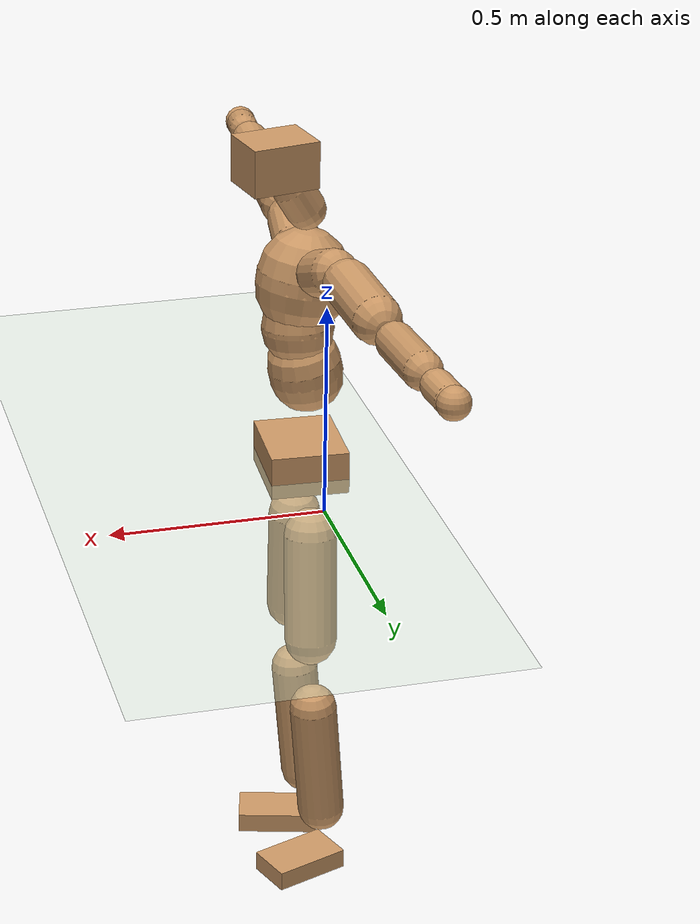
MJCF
<mujoco model="humanoid">
  <compiler coordinate="local" angle="radian"/>
  <default>
    <joint damping="0.0" armature="0.01" stiffness="0.0" limited="true"/>
    <geom conaffinity="1" condim="3" contype="7" margin="0.001" rgba="0.8 0.6 .4 1"/>
  </default>
  <asset>
    <texture type="skybox" builtin="gradient" rgb1=".4 .5 .6" rgb2="0 0 0" width="100" height="100"/>
    <texture builtin="flat" height="1278" mark="cross" markrgb="1 1 1" name="texgeom" random="0.01" rgb1="0.8 0.6 0.4" rgb2="0.8 0.6 0.4" type="cube" width="127"/>
    <texture builtin="checker" height="100" name="texplane" rgb1="0 0 0" rgb2="0.8 0.8 0.8" type="2d" width="100"/>
    <material name="MatPlane" reflectance="0.5" shininess="1" specular="1" texrepeat="60 60" texture="texplane"/>
    <material name="geom" texture="texgeom" texuniform="true"/>
  </asset>
  <worldbody>
    <light cutoff="100" diffuse="1 1 1" dir="-0 0 -1.3" directional="true" exponent="1" pos="0 0 1.3" specular=".1 .1 .1"/>
    <geom conaffinity="1" condim="3" name="floor" pos="0 0 0" rgba="0.8 0.9 0.8 1" size="100 100 .2" type="plane" material="MatPlane"/>
    <body name="Pelvis" pos="-0.0015 -0.2634 0.0224">
      <freejoint name="Pelvis"/>
      <geom type="box" contype="1" conaffinity="1" density="500" pos="-0.0118 0.0006 -0.0087" size="0.0927 0.1089 0.051" quat="0.9997 0.0000 0.0000 -0.0248" name="Pelvis"/>
      <body name="L_Hip" pos="-0.0194 0.0597 -0.0922">
        <joint name="L_Hip_x" type="hinge" pos="0 0 0" axis="1 0 0" stiffness="800" damping="80" armature="0.02" range="-180.0000 180.0000"/>
        <joint name="L_Hip_y" type="hinge" pos="0 0 0" axis="0 1 0" stiffness="800" damping="80" armature="0.02" range="-180.0000 180.0000"/>
        <joint name="L_Hip_z" type="hinge" pos="0 0 0" axis="0 0 1" stiffness="800" damping="80" armature="0.02" range="-180.0000 180.0000"/>
        <geom type="capsule" contype="1" conaffinity="1" density="500" fromto="0.0017 0.0100 -0.0890 0.0068 0.0399 -0.3562" size="0.0628" name="L_Hip"/>
        <body name="L_Knee" pos="0.0085 0.0499 -0.4452">
          <joint name="L_Knee_x" type="hinge" pos="0 0 0" axis="1 0 0" stiffness="800" damping="80" armature="0.02" range="-180.0000 180.0000"/>
          <joint name="L_Knee_y" type="hinge" pos="0 0 0" axis="0 1 0" stiffness="800" damping="80" armature="0.02" range="-180.0000 180.0000"/>
          <joint name="L_Knee_z" type="hinge" pos="0 0 0" axis="0 0 1" stiffness="800" damping="80" armature="0.02" range="-180.0000 180.0000"/>
          <geom type="capsule" contype="1" conaffinity="1" density="500" fromto="-0.0083 -0.0033 -0.0994 -0.0332 -0.0130 -0.3976" size="0.057" name="L_Knee"/>
          <body name="L_Ankle" pos="-0.0415 -0.0163 -0.497">
            <joint name="L_Ankle_x" type="hinge" pos="0 0 0" axis="1 0 0" stiffness="800" damping="80" armature="0.02" range="-180.0000 180.0000"/>
            <joint name="L_Ankle_y" type="hinge" pos="0 0 0" axis="0 1 0" stiffness="800" damping="80" armature="0.02" range="-180.0000 180.0000"/>
            <joint name="L_Ankle_z" type="hinge" pos="0 0 0" axis="0 0 1" stiffness="800" damping="80" armature="0.02" range="-180.0000 180.0000"/>
            <geom type="box" contype="1" conaffinity="1" density="500" pos="0.0663 0.0239 -0.0343" size="0.0937 0.0565 0.0241" quat="0.9851 0.0000 0.0000 0.1722" name="L_Ankle"/>
            <body name="L_Toe" pos="0.1327 0.0479 -0.0686">
              <joint name="L_Toe_x" type="hinge" pos="0 0 0" axis="1 0 0" stiffness="500" damping="50" armature="0.02" range="-180.0000 180.0000"/>
              <joint name="L_Toe_y" type="hinge" pos="0 0 0" axis="0 1 0" stiffness="500" damping="50" armature="0.02" range="-180.0000 180.0000"/>
              <joint name="L_Toe_z" type="hinge" pos="0 0 0" axis="0 0 1" stiffness="500" damping="50" armature="0.02" range="-180.0000 180.0000"/>
              <geom type="box" contype="1" conaffinity="1" density="500" pos="0.0000 0.0000 0.0354" size="0.0011 0.0026 0.0013" quat="0.9843 0.0000 0.0000 0.1764" name="L_Toe"/>
            </body>
          </body>
        </body>
      </body>
      <body name="R_Hip" pos="-0.0151 -0.0615 -0.1022">
        <joint name="R_Hip_x" type="hinge" pos="0 0 0" axis="1 0 0" stiffness="800" damping="80" armature="0.02" range="-180.0000 180.0000"/>
        <joint name="R_Hip_y" type="hinge" pos="0 0 0" axis="0 1 0" stiffness="800" damping="80" armature="0.02" range="-180.0000 180.0000"/>
        <joint name="R_Hip_z" type="hinge" pos="0 0 0" axis="0 0 1" stiffness="800" damping="80" armature="0.02" range="-180.0000 180.0000"/>
        <geom type="capsule" contype="1" conaffinity="1" density="500" fromto="-0.0012 -0.0107 -0.0889 -0.0048 -0.0429 -0.3557" size="0.0623" name="R_Hip"/>
        <body name="R_Knee" pos="-0.006 -0.0536 -0.4446">
          <joint name="R_Knee_x" type="hinge" pos="0 0 0" axis="1 0 0" stiffness="800" damping="80" armature="0.02" range="-180.0000 180.0000"/>
          <joint name="R_Knee_y" type="hinge" pos="0 0 0" axis="0 1 0" stiffness="800" damping="80" armature="0.02" range="-180.0000 180.0000"/>
          <joint name="R_Knee_z" type="hinge" pos="0 0 0" axis="0 0 1" stiffness="800" damping="80" armature="0.02" range="-180.0000 180.0000"/>
          <geom type="capsule" contype="1" conaffinity="1" density="500" fromto="-0.0075 0.0045 -0.0985 -0.0301 0.0178 -0.3938" size="0.0569" name="R_Knee"/>
          <body name="R_Ankle" pos="-0.0376 0.0223 -0.4923">
            <joint name="R_Ankle_x" type="hinge" pos="0 0 0" axis="1 0 0" stiffness="800" damping="80" armature="0.02" range="-180.0000 180.0000"/>
            <joint name="R_Ankle_y" type="hinge" pos="0 0 0" axis="0 1 0" stiffness="800" damping="80" armature="0.02" range="-180.0000 180.0000"/>
            <joint name="R_Ankle_z" type="hinge" pos="0 0 0" axis="0 0 1" stiffness="800" damping="80" armature="0.02" range="-180.0000 180.0000"/>
            <geom type="box" contype="1" conaffinity="1" density="500" pos="0.0713 -0.0196 -0.0360" size="0.0989 0.0541 0.0242" quat="0.9910 0.0000 0.0000 -0.1341" name="R_Ankle"/>
            <body name="R_Toe" pos="0.1425 -0.0393 -0.0721">
              <joint name="R_Toe_x" type="hinge" pos="0 0 0" axis="1 0 0" stiffness="500" damping="50" armature="0.02" range="-180.0000 180.0000"/>
              <joint name="R_Toe_y" type="hinge" pos="0 0 0" axis="0 1 0" stiffness="500" damping="50" armature="0.02" range="-180.0000 180.0000"/>
              <joint name="R_Toe_z" type="hinge" pos="0 0 0" axis="0 0 1" stiffness="500" damping="50" armature="0.02" range="-180.0000 180.0000"/>
              <geom type="box" contype="1" conaffinity="1" density="500" pos="0.0000 0.0000 0.0375" size="0.0011 0.0026 0.0013" quat="0.9920 0.0000 0.0000 -0.1259" name="R_Toe"/>
            </body>
          </body>
        </body>
      </body>
      <body name="Torso" pos="-0.0361 0.0053 0.1421">
        <joint name="Torso_x" type="hinge" pos="0 0 0" axis="1 0 0" stiffness="1000" damping="100" armature="0.02" range="-180.0000 180.0000"/>
        <joint name="Torso_y" type="hinge" pos="0 0 0" axis="0 1 0" stiffness="1000" damping="100" armature="0.02" range="-180.0000 180.0000"/>
        <joint name="Torso_z" type="hinge" pos="0 0 0" axis="0 0 1" stiffness="1000" damping="100" armature="0.02" range="-180.0000 180.0000"/>
        <geom type="capsule" contype="1" conaffinity="1" density="500" fromto="0.0208 0.0033 0.0941 0.0139 0.0022 0.0627" size="0.0873" name="Torso"/>
        <body name="Spine" pos="0.0347 0.0055 0.1568">
          <joint name="Spine_x" type="hinge" pos="0 0 0" axis="1 0 0" stiffness="1000" damping="100" armature="0.02" range="-180.0000 180.0000"/>
          <joint name="Spine_y" type="hinge" pos="0 0 0" axis="0 1 0" stiffness="1000" damping="100" armature="0.02" range="-180.0000 180.0000"/>
          <joint name="Spine_z" type="hinge" pos="0 0 0" axis="0 0 1" stiffness="1000" damping="100" armature="0.02" range="-180.0000 180.0000"/>
          <geom type="capsule" contype="1" conaffinity="1" density="500" fromto="0.0014 -0.0021 0.0377 0.0010 -0.0014 0.0251" size="0.0851" name="Spine"/>
          <body name="Chest" pos="0.0024 -0.0035 0.0628">
            <joint name="Chest_x" type="hinge" pos="0 0 0" axis="1 0 0" stiffness="1000" damping="100" armature="0.02" range="-180.0000 180.0000"/>
            <joint name="Chest_y" type="hinge" pos="0 0 0" axis="0 1 0" stiffness="1000" damping="100" armature="0.02" range="-180.0000 180.0000"/>
            <joint name="Chest_z" type="hinge" pos="0 0 0" axis="0 0 1" stiffness="1000" damping="100" armature="0.02" range="-180.0000 180.0000"/>
            <geom type="capsule" contype="1" conaffinity="1" density="500" fromto="-0.0160 -0.0049 0.0952 -0.0107 -0.0033 0.0635" size="0.1081" name="Chest"/>
            <body name="Neck" pos="-0.0329 -0.0134 0.229">
              <joint name="Neck_x" type="hinge" pos="0 0 0" axis="1 0 0" stiffness="500" damping="50" armature="0.02" range="-180.0000 180.0000"/>
              <joint name="Neck_y" type="hinge" pos="0 0 0" axis="0 1 0" stiffness="500" damping="50" armature="0.02" range="-180.0000 180.0000"/>
              <joint name="Neck_z" type="hinge" pos="0 0 0" axis="0 0 1" stiffness="500" damping="50" armature="0.02" range="-180.0000 180.0000"/>
              <geom type="capsule" contype="1" conaffinity="1" density="500" fromto="0.0114 0.0018 0.0190 0.0455 0.0074 0.0759" size="0.0472" name="Neck"/>
              <body name="Head" pos="0.0568 0.0092 0.0949">
                <joint name="Head_x" type="hinge" pos="0 0 0" axis="1 0 0" stiffness="500" damping="50" armature="0.02" range="-180.0000 180.0000"/>
                <joint name="Head_y" type="hinge" pos="0 0 0" axis="0 1 0" stiffness="500" damping="50" armature="0.02" range="-180.0000 180.0000"/>
                <joint name="Head_z" type="hinge" pos="0 0 0" axis="0 0 1" stiffness="500" damping="50" armature="0.02" range="-180.0000 180.0000"/>
                <geom type="box" contype="1" conaffinity="1" density="500" pos="0.0294 0.0056 0.0485" size="0.0799 0.0646 0.0553" quat="0.9956 0.0000 0.0000 0.0942" name="Head"/>
              </body>
            </body>
            <body name="L_Thorax" pos="-0.0225 0.0765 0.1244">
              <joint name="L_Thorax_x" type="hinge" pos="0 0 0" axis="1 0 0" stiffness="500" damping="50" armature="0.02" range="-180.0000 180.0000"/>
              <joint name="L_Thorax_y" type="hinge" pos="0 0 0" axis="0 1 0" stiffness="500" damping="50" armature="0.02" range="-180.0000 180.0000"/>
              <joint name="L_Thorax_z" type="hinge" pos="0 0 0" axis="0 0 1" stiffness="500" damping="50" armature="0.02" range="-180.0000 180.0000"/>
              <geom type="capsule" contype="1" conaffinity="1" density="500" fromto="-0.0038 0.0246 0.0101 -0.0151 0.0982 0.0403" size="0.0551" name="L_Thorax"/>
              <body name="L_Shoulder" pos="-0.0189 0.1228 0.0503">
                <joint name="L_Shoulder_x" type="hinge" pos="0 0 0" axis="1 0 0" stiffness="500" damping="50" armature="0.02" range="-720.0000 720.0000"/>
                <joint name="L_Shoulder_y" type="hinge" pos="0 0 0" axis="0 1 0" stiffness="500" damping="50" armature="0.02" range="-720.0000 720.0000"/>
                <joint name="L_Shoulder_z" type="hinge" pos="0 0 0" axis="0 0 1" stiffness="500" damping="50" armature="0.02" range="-720.0000 720.0000"/>
                <geom type="capsule" contype="1" conaffinity="1" density="500" fromto="-0.0047 0.0594 -0.0042 -0.0188 0.2375 -0.0169" size="0.0563" name="L_Shoulder"/>
                <body name="L_Elbow" pos="-0.0234 0.2969 -0.0211">
                  <joint name="L_Elbow_x" type="hinge" pos="0 0 0" axis="1 0 0" stiffness="500" damping="50" armature="0.02" range="-720.0000 720.0000"/>
                  <joint name="L_Elbow_y" type="hinge" pos="0 0 0" axis="0 1 0" stiffness="500" damping="50" armature="0.02" range="-720.0000 720.0000"/>
                  <joint name="L_Elbow_z" type="hinge" pos="0 0 0" axis="0 0 1" stiffness="500" damping="50" armature="0.02" range="-720.0000 720.0000"/>
                  <geom type="capsule" contype="1" conaffinity="1" density="500" fromto="-0.0021 0.0591 0.0028 -0.0083 0.2362 0.0112" size="0.0432" name="L_Elbow"/>
                  <body name="L_Wrist" pos="-0.0104 0.2953 0.014">
                    <joint name="L_Wrist_x" type="hinge" pos="0 0 0" axis="1 0 0" stiffness="300" damping="30" armature="0.02" range="-180.0000 180.0000"/>
                    <joint name="L_Wrist_y" type="hinge" pos="0 0 0" axis="0 1 0" stiffness="300" damping="30" armature="0.02" range="-180.0000 180.0000"/>
                    <joint name="L_Wrist_z" type="hinge" pos="0 0 0" axis="0 0 1" stiffness="300" damping="30" armature="0.02" range="-180.0000 180.0000"/>
                    <geom type="capsule" contype="1" conaffinity="1" density="500" fromto="-0.0033 0.0181 -0.0021 -0.0133 0.0723 -0.0085" size="0.0355" name="L_Wrist"/>
                    <body name="L_Hand" pos="-0.0166 0.0904 -0.0107">
                      <joint name="L_Hand_x" type="hinge" pos="0 0 0" axis="1 0 0" stiffness="300" damping="30" armature="0.02" range="-180.0000 180.0000"/>
                      <joint name="L_Hand_y" type="hinge" pos="0 0 0" axis="0 1 0" stiffness="300" damping="30" armature="0.02" range="-180.0000 180.0000"/>
                      <joint name="L_Hand_z" type="hinge" pos="0 0 0" axis="0 0 1" stiffness="300" damping="30" armature="0.02" range="-180.0000 180.0000"/>
                      <geom type="sphere" contype="1" conaffinity="1" density="500" size="0.0371" pos="0.0000 0.0000 0.0000" name="L_Hand"/>
                    </body>
                  </body>
                </body>
              </body>
            </body>
            <body name="R_Thorax" pos="-0.0247 -0.0877 0.1227">
              <joint name="R_Thorax_x" type="hinge" pos="0 0 0" axis="1 0 0" stiffness="500" damping="50" armature="0.02" range="-180.0000 180.0000"/>
              <joint name="R_Thorax_y" type="hinge" pos="0 0 0" axis="0 1 0" stiffness="500" damping="50" armature="0.02" range="-180.0000 180.0000"/>
              <joint name="R_Thorax_z" type="hinge" pos="0 0 0" axis="0 0 1" stiffness="500" damping="50" armature="0.02" range="-180.0000 180.0000"/>
              <geom type="capsule" contype="1" conaffinity="1" density="500" fromto="-0.0014 -0.0230 0.0103 -0.0055 -0.0920 0.0413" size="0.0554" name="R_Thorax"/>
              <body name="R_Shoulder" pos="-0.0068 -0.115 0.0516">
                <joint name="R_Shoulder_x" type="hinge" pos="0 0 0" axis="1 0 0" stiffness="500" damping="50" armature="0.02" range="-720.0000 720.0000"/>
                <joint name="R_Shoulder_y" type="hinge" pos="0 0 0" axis="0 1 0" stiffness="500" damping="50" armature="0.02" range="-720.0000 720.0000"/>
                <joint name="R_Shoulder_z" type="hinge" pos="0 0 0" axis="0 0 1" stiffness="500" damping="50" armature="0.02" range="-720.0000 720.0000"/>
                <geom type="capsule" contype="1" conaffinity="1" density="500" fromto="-0.0061 -0.0597 -0.0042 -0.0244 -0.2386 -0.0168" size="0.0576" name="R_Shoulder"/>
                <body name="R_Elbow" pos="-0.0305 -0.2983 -0.021">
                  <joint name="R_Elbow_x" type="hinge" pos="0 0 0" axis="1 0 0" stiffness="500" damping="50" armature="0.02" range="-720.0000 720.0000"/>
                  <joint name="R_Elbow_y" type="hinge" pos="0 0 0" axis="0 1 0" stiffness="500" damping="50" armature="0.02" range="-720.0000 720.0000"/>
                  <joint name="R_Elbow_z" type="hinge" pos="0 0 0" axis="0 0 1" stiffness="500" damping="50" armature="0.02" range="-720.0000 720.0000"/>
                  <geom type="capsule" contype="1" conaffinity="1" density="500" fromto="-0.0020 -0.0607 0.0025 -0.0080 -0.2430 0.0100" size="0.0442" name="R_Elbow"/>
                  <body name="R_Wrist" pos="-0.01 -0.3037 0.0125">
                    <joint name="R_Wrist_x" type="hinge" pos="0 0 0" axis="1 0 0" stiffness="300" damping="30" armature="0.02" range="-180.0000 180.0000"/>
                    <joint name="R_Wrist_y" type="hinge" pos="0 0 0" axis="0 1 0" stiffness="300" damping="30" armature="0.02" range="-180.0000 180.0000"/>
                    <joint name="R_Wrist_z" type="hinge" pos="0 0 0" axis="0 0 1" stiffness="300" damping="30" armature="0.02" range="-180.0000 180.0000"/>
                    <geom type="capsule" contype="1" conaffinity="1" density="500" fromto="-0.0021 -0.0187 -0.0018 -0.0086 -0.0747 -0.0070" size="0.0363" name="R_Wrist"/>
                    <body name="R_Hand" pos="-0.0107 -0.0933 -0.0088">
                      <joint name="R_Hand_x" type="hinge" pos="0 0 0" axis="1 0 0" stiffness="300" damping="30" armature="0.02" range="-180.0000 180.0000"/>
                      <joint name="R_Hand_y" type="hinge" pos="0 0 0" axis="0 1 0" stiffness="300" damping="30" armature="0.02" range="-180.0000 180.0000"/>
                      <joint name="R_Hand_z" type="hinge" pos="0 0 0" axis="0 0 1" stiffness="300" damping="30" armature="0.02" range="-180.0000 180.0000"/>
                      <geom type="sphere" contype="1" conaffinity="1" density="500" size="0.0379" pos="0.0000 0.0000 0.0000" name="R_Hand"/>
                    </body>
                  </body>
                </body>
              </body>
            </body>
          </body>
        </body>
      </body>
    </body>
  </worldbody>
  <actuator>
    <motor name="L_Hip_x" joint="L_Hip_x" gear="500"/>
    <motor name="L_Hip_y" joint="L_Hip_y" gear="500"/>
    <motor name="L_Hip_z" joint="L_Hip_z" gear="500"/>
    <motor name="L_Knee_x" joint="L_Knee_x" gear="500"/>
    <motor name="L_Knee_y" joint="L_Knee_y" gear="500"/>
    <motor name="L_Knee_z" joint="L_Knee_z" gear="500"/>
    <motor name="L_Ankle_x" joint="L_Ankle_x" gear="500"/>
    <motor name="L_Ankle_y" joint="L_Ankle_y" gear="500"/>
    <motor name="L_Ankle_z" joint="L_Ankle_z" gear="500"/>
    <motor name="L_Toe_x" joint="L_Toe_x" gear="500"/>
    <motor name="L_Toe_y" joint="L_Toe_y" gear="500"/>
    <motor name="L_Toe_z" joint="L_Toe_z" gear="500"/>
    <motor name="R_Hip_x" joint="R_Hip_x" gear="500"/>
    <motor name="R_Hip_y" joint="R_Hip_y" gear="500"/>
    <motor name="R_Hip_z" joint="R_Hip_z" gear="500"/>
    <motor name="R_Knee_x" joint="R_Knee_x" gear="500"/>
    <motor name="R_Knee_y" joint="R_Knee_y" gear="500"/>
    <motor name="R_Knee_z" joint="R_Knee_z" gear="500"/>
    <motor name="R_Ankle_x" joint="R_Ankle_x" gear="500"/>
    <motor name="R_Ankle_y" joint="R_Ankle_y" gear="500"/>
    <motor name="R_Ankle_z" joint="R_Ankle_z" gear="500"/>
    <motor name="R_Toe_x" joint="R_Toe_x" gear="500"/>
    <motor name="R_Toe_y" joint="R_Toe_y" gear="500"/>
    <motor name="R_Toe_z" joint="R_Toe_z" gear="500"/>
    <motor name="Torso_x" joint="Torso_x" gear="500"/>
    <motor name="Torso_y" joint="Torso_y" gear="500"/>
    <motor name="Torso_z" joint="Torso_z" gear="500"/>
    <motor name="Spine_x" joint="Spine_x" gear="500"/>
    <motor name="Spine_y" joint="Spine_y" gear="500"/>
    <motor name="Spine_z" joint="Spine_z" gear="500"/>
    <motor name="Chest_x" joint="Chest_x" gear="500"/>
    <motor name="Chest_y" joint="Chest_y" gear="500"/>
    <motor name="Chest_z" joint="Chest_z" gear="500"/>
    <motor name="Neck_x" joint="Neck_x" gear="500"/>
    <motor name="Neck_y" joint="Neck_y" gear="500"/>
    <motor name="Neck_z" joint="Neck_z" gear="500"/>
    <motor name="Head_x" joint="Head_x" gear="500"/>
    <motor name="Head_y" joint="Head_y" gear="500"/>
    <motor name="Head_z" joint="Head_z" gear="500"/>
    <motor name="L_Thorax_x" joint="L_Thorax_x" gear="500"/>
    <motor name="L_Thorax_y" joint="L_Thorax_y" gear="500"/>
    <motor name="L_Thorax_z" joint="L_Thorax_z" gear="500"/>
    <motor name="L_Shoulder_x" joint="L_Shoulder_x" gear="500"/>
    <motor name="L_Shoulder_y" joint="L_Shoulder_y" gear="500"/>
    <motor name="L_Shoulder_z" joint="L_Shoulder_z" gear="500"/>
    <motor name="L_Elbow_x" joint="L_Elbow_x" gear="500"/>
    <motor name="L_Elbow_y" joint="L_Elbow_y" gear="500"/>
    <motor name="L_Elbow_z" joint="L_Elbow_z" gear="500"/>
    <motor name="L_Wrist_x" joint="L_Wrist_x" gear="500"/>
    <motor name="L_Wrist_y" joint="L_Wrist_y" gear="500"/>
    <motor name="L_Wrist_z" joint="L_Wrist_z" gear="500"/>
    <motor name="L_Hand_x" joint="L_Hand_x" gear="500"/>
    <motor name="L_Hand_y" joint="L_Hand_y" gear="500"/>
    <motor name="L_Hand_z" joint="L_Hand_z" gear="500"/>
    <motor name="R_Thorax_x" joint="R_Thorax_x" gear="500"/>
    <motor name="R_Thorax_y" joint="R_Thorax_y" gear="500"/>
    <motor name="R_Thorax_z" joint="R_Thorax_z" gear="500"/>
    <motor name="R_Shoulder_x" joint="R_Shoulder_x" gear="500"/>
    <motor name="R_Shoulder_y" joint="R_Shoulder_y" gear="500"/>
    <motor name="R_Shoulder_z" joint="R_Shoulder_z" gear="500"/>
    <motor name="R_Elbow_x" joint="R_Elbow_x" gear="500"/>
    <motor name="R_Elbow_y" joint="R_Elbow_y" gear="500"/>
    <motor name="R_Elbow_z" joint="R_Elbow_z" gear="500"/>
    <motor name="R_Wrist_x" joint="R_Wrist_x" gear="500"/>
    <motor name="R_Wrist_y" joint="R_Wrist_y" gear="500"/>
    <motor name="R_Wrist_z" joint="R_Wrist_z" gear="500"/>
    <motor name="R_Hand_x" joint="R_Hand_x" gear="500"/>
    <motor name="R_Hand_y" joint="R_Hand_y" gear="500"/>
    <motor name="R_Hand_z" joint="R_Hand_z" gear="500"/>
  </actuator>
  <contact>
    <exclude body1="Torso" body2="Chest"/>
    <exclude body1="Head" body2="Chest"/>
    <exclude body1="R_Knee" body2="R_Toe"/>
    <exclude body1="R_Knee" body2="L_Ankle"/>
    <exclude body1="R_Knee" body2="L_Toe"/>
    <exclude body1="L_Knee" body2="L_Toe"/>
    <exclude body1="L_Knee" body2="R_Ankle"/>
    <exclude body1="L_Knee" body2="R_Toe"/>
    <exclude body1="L_Shoulder" body2="Chest"/>
    <exclude body1="R_Shoulder" body2="Chest"/>
  </contact>
  <sensor/>
  <size njmax="700" nconmax="700"/>
</mujoco>
